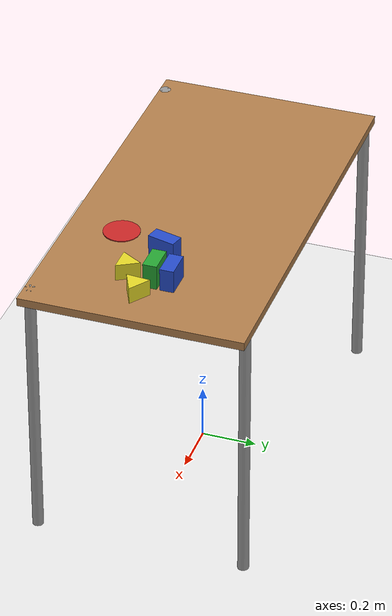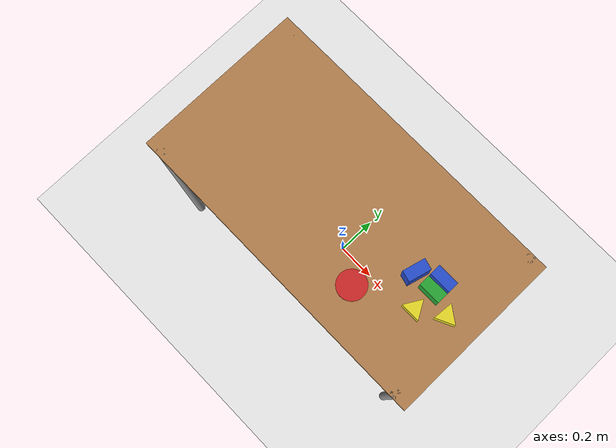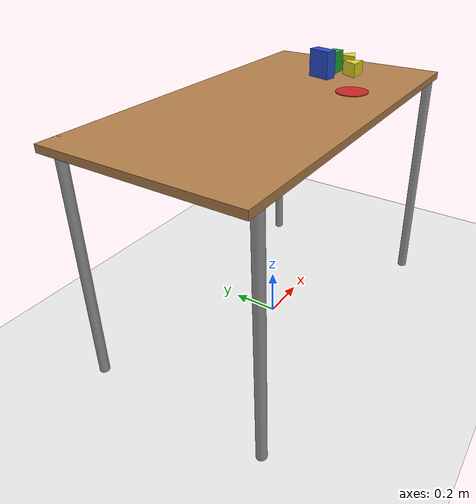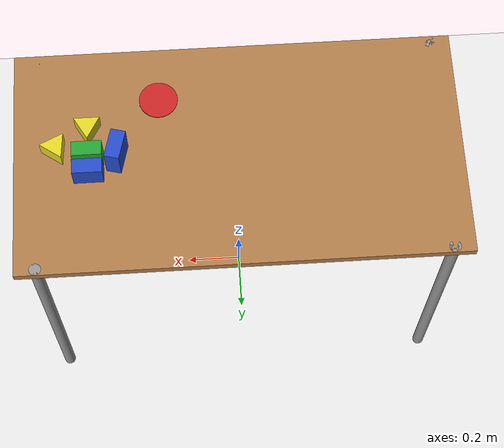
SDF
<sdf version="1.7">
 <world name="default">
  <light name="sun" type="directional">
   <pose>0 0 10 0 -0 0</pose>
   <diffuse>0.8 0.8 0.8 1</diffuse>
   <specular>0.2 0.2 0.2 1</specular>
   <attenuation>
    <range>1000</range>
    <constant>0.9</constant>
    <linear>0.01</linear>
    <quadratic>0.001</quadratic>
   </attenuation>
   <direction>-0.5 0.1 -0.9</direction>
   <spot><inner_angle>0</inner_angle><outer_angle>0</outer_angle><falloff>0</falloff></spot>
  </light>
  <model name="ground_plane">
   <static>1</static>
   <link name="link">
    <collision name="collision">
     <geometry><plane><normal>0 0 1</normal><size>100 100</size></plane></geometry>
     <surface>
      <contact><collide_bitmask>65535</collide_bitmask></contact>
      <friction><ode><mu>100</mu><mu2>50</mu2></ode></friction>
     </surface>
    </collision>
    <visual name="visual">
     <cast_shadows>0</cast_shadows>
     <geometry><plane><normal>0 0 1</normal><size>100 100</size></plane></geometry>
     <material>
      <script><uri>file://media/materials/scripts/gazebo.material</uri><name>Gazebo/WhiteGlow</name></script>
     </material>
    </visual>
   </link>
  </model>
  <gravity>0 0 -9.8</gravity>
  <magnetic_field>6e-06 2.3e-05 -4.2e-05</magnetic_field>
  <atmosphere type="adiabatic"/>
  <physics name="default_physics" default="0" type="ode">
   <max_step_size>0.001</max_step_size>
   <real_time_factor>2</real_time_factor>
   <real_time_update_rate>2000</real_time_update_rate>
  </physics>
  <scene><ambient>0.4 0.4 0.4 1</ambient><background>0.7 0.7 0.7 1</background><shadows>1</shadows></scene>
  <audio><device>default</device></audio>
  <spherical_coordinates>
   <surface_model>EARTH_WGS84</surface_model>
   <latitude_deg>0</latitude_deg>
   <longitude_deg>0</longitude_deg>
   <elevation>0</elevation>
   <heading_deg>0</heading_deg>
  </spherical_coordinates>
  <model name="table">
   <static>1</static>
   <link name="link">
    <collision name="surface">
     <pose>0 0 0.985 0 -0 0</pose>
     <geometry><box><size>1.5 0.8 0.03</size></box></geometry>
     <surface><friction><ode><mu>0.6</mu><mu2>0.6</mu2></ode></friction></surface>
    </collision>
    <visual name="visual1">
     <pose>0 0 0.985 0 -0 0</pose>
     <geometry><box><size>1.5 0.8 0.03</size></box></geometry>
     <material>
      <script><uri>file://media/materials/scripts/gazebo.material</uri><name>Gazebo/Wood</name></script>
     </material>
    </visual>
    <collision name="front_left_leg">
     <pose>0.68 0.38 0.5 0 -0 0</pose>
     <geometry><cylinder><radius>0.02</radius><length>1</length></cylinder></geometry>
    </collision>
    <visual name="front_left_leg">
     <pose>0.68 0.38 0.5 0 -0 0</pose>
     <geometry><cylinder><radius>0.02</radius><length>1</length></cylinder></geometry>
     <material>
      <script><uri>file://media/materials/scripts/gazebo.material</uri><name>Gazebo/Grey</name></script>
     </material>
    </visual>
    <collision name="front_right_leg">
     <pose>0.68 -0.38 0.5 0 -0 0</pose>
     <geometry><cylinder><radius>0.02</radius><length>1</length></cylinder></geometry>
    </collision>
    <visual name="front_right_leg">
     <pose>0.68 -0.38 0.5 0 -0 0</pose>
     <geometry><cylinder><radius>0.02</radius><length>1</length></cylinder></geometry>
     <material>
      <script><uri>file://media/materials/scripts/gazebo.material</uri><name>Gazebo/Grey</name></script>
     </material>
    </visual>
    <collision name="back_right_leg">
     <pose>-0.68 -0.38 0.5 0 -0 0</pose>
     <geometry><cylinder><radius>0.02</radius><length>1</length></cylinder></geometry>
    </collision>
    <visual name="back_right_leg">
     <pose>-0.68 -0.38 0.5 0 -0 0</pose>
     <geometry><cylinder><radius>0.02</radius><length>1</length></cylinder></geometry>
     <material>
      <script><uri>file://media/materials/scripts/gazebo.material</uri><name>Gazebo/Grey</name></script>
     </material>
    </visual>
    <collision name="back_left_leg">
     <pose>-0.68 0.38 0.5 0 -0 0</pose>
     <geometry><cylinder><radius>0.02</radius><length>1</length></cylinder></geometry>
    </collision>
    <visual name="back_left_leg">
     <pose>-0.68 0.38 0.5 0 -0 0</pose>
     <geometry><cylinder><radius>0.02</radius><length>1</length></cylinder></geometry>
     <material>
      <script><uri>file://media/materials/scripts/gazebo.material</uri><name>Gazebo/Grey</name></script>
     </material>
    </visual>
   </link>
  </model>
  <model name="cube">
   <static>0</static>
   <pose>0.5 -2e-06 1.04529 -5e-06 4e-06 0.001005</pose>
   <link name="link">
    <inertial>
     <mass>1</mass>
     <inertia><ixx>0.1</ixx><ixy>0</ixy><ixz>0</ixz><iyy>0.1</iyy><iyz>0</iyz><izz>0.1</izz></inertia>
    </inertial>
    <visual name="visual">
     <geometry><box><size>0.1 0.05 0.0905843</size></box></geometry>
     <material>
      <script><name>Gazebo/Green</name><uri>file://media/materials/scripts/gazebo.material</uri></script>
     </material>
    </visual>
    <collision name="collision"><geometry><box><size>0.1 0.05 0.0905843</size></box></geometry></collision>
   </link>
  </model>
  <model name="cube2">
   <static>0</static>
   <pose>0.5 0.059999 1.04184 -2e-06 -1.5e-05 0.00049</pose>
   <link name="link">
    <inertial>
     <mass>1</mass>
     <inertia><ixx>0.1</ixx><ixy>0</ixy><ixz>0</ixz><iyy>0.1</iyy><iyz>0</iyz><izz>0.1</izz></inertia>
    </inertial>
    <visual name="visual">
     <geometry><box><size>0.1 0.05 0.0836808</size></box></geometry>
     <material>
      <script><name>Gazebo/blue</name><uri>file://media/materials/scripts/gazebo.material</uri></script>
     </material>
    </visual>
    <collision name="collision"><geometry><box><size>0.1 0.05 0.0836808</size></box></geometry></collision>
   </link>
  </model>
  <model name="pushed_object">
   <static>0</static>
   <pose>0.5 -0.1 1.03 0 1e-06 8e-06</pose>
   <link name="link">
    <inertial>
     <mass>1</mass>
     <inertia><ixx>0.1</ixx><ixy>0</ixy><ixz>0</ixz><iyy>0.1</iyy><iyz>0</iyz><izz>0.1</izz></inertia>
    </inertial>
    <visual name="visual">
     <geometry><mesh><uri>model://objects/meshes/triangular_prism.dae</uri></mesh></geometry>
     <material>
      <script><name>Gazebo/Yellow</name><uri>file://media/materials/scripts/gazebo.material</uri></script>
     </material>
    </visual>
    <collision name="collision">
     <geometry><mesh><uri>model://objects/meshes/triangular_prism.dae</uri></mesh></geometry>
    </collision>
   </link>
  </model>
  <model name="cube2_clone">
   <static>0</static>
   <pose>0.404433 0.00269 1.05831 0 -1e-06 1.31565</pose>
   <link name="link">
    <inertial>
     <mass>1</mass>
     <inertia><ixx>0.1</ixx><ixy>0</ixy><ixz>0</ixz><iyy>0.1</iyy><iyz>0</iyz><izz>0.1</izz></inertia>
    </inertial>
    <visual name="visual">
     <geometry><box><size>0.1 0.05 0.116618</size></box></geometry>
     <material>
      <script><name>Gazebo/blue</name><uri>file://media/materials/scripts/gazebo.material</uri></script>
     </material>
    </visual>
    <collision name="collision"><geometry><box><size>0.1 0.05 0.116618</size></box></geometry></collision>
   </link>
  </model>
  <model name="pushed_object_clone">
   <static>0</static>
   <pose>0.607388 -0.030508 1.03 -0 1e-06 0.44116</pose>
   <link name="link">
    <inertial>
     <mass>1</mass>
     <inertia><ixx>0.1</ixx><ixy>0</ixy><ixz>0</ixz><iyy>0.1</iyy><iyz>0</iyz><izz>0.1</izz></inertia>
    </inertial>
    <visual name="visual">
     <geometry><mesh><uri>model://objects/meshes/triangular_prism.dae</uri></mesh></geometry>
     <material>
      <script><name>Gazebo/Yellow</name><uri>file://media/materials/scripts/gazebo.material</uri></script>
     </material>
    </visual>
    <collision name="collision">
     <geometry><mesh><uri>model://objects/meshes/triangular_prism.dae</uri></mesh></geometry>
    </collision>
   </link>
  </model>
  <model name="unit_cylinder">
   <link name="link">
    <inertial>
     <mass>1</mass>
     <inertia><ixx>0.145833</ixx><ixy>0</ixy><ixz>0</ixz><iyy>0.145833</iyy><iyz>0</iyz><izz>0.125</izz></inertia>
    </inertial>
    <visual name="visual">
     <geometry><cylinder><radius>0.0654006</radius><length>0.00341783</length></cylinder></geometry>
     <material>
      <script><name>Gazebo/Red</name><uri>file://media/materials/scripts/gazebo.material</uri></script>
      <shader type="pixel"><normal_map>__default__</normal_map></shader>
      <ambient>1 0 0 1</ambient>
      <diffuse>1 0 0 1</diffuse>
      <specular>0.1 0.1 0.1 1</specular>
      <emissive>0 0 0 1</emissive>
     </material>
    </visual>
    <collision name="collision">
     <geometry><cylinder><radius>0.065401</radius><length>0.00341793</length></cylinder></geometry>
     <surface>
      <friction>
       <ode><mu>1</mu><mu2>1</mu2><fdir1>0 0 0</fdir1><slip1>0</slip1><slip2>0</slip2></ode>
       <torsional>
        <coefficient>1</coefficient>
        <patch_radius>0</patch_radius>
        <surface_radius>0</surface_radius>
        <use_patch_radius>1</use_patch_radius>
        <ode><slip>0</slip></ode>
       </torsional>
      </friction>
      <bounce><restitution_coefficient>0</restitution_coefficient><threshold>1e+06</threshold></bounce>
      <contact>
       <collide_without_contact>0</collide_without_contact>
       <collide_without_contact_bitmask>1</collide_without_contact_bitmask>
       <collide_bitmask>1</collide_bitmask>
       <ode>
        <soft_cfm>0</soft_cfm>
        <soft_erp>0.2</soft_erp>
        <kp>1e+13</kp>
        <kd>1</kd>
        <max_vel>0.01</max_vel>
        <min_depth>0</min_depth>
       </ode>
       <bullet>
        <split_impulse>1</split_impulse>
        <split_impulse_penetration_threshold>-0.01</split_impulse_penetration_threshold>
        <soft_cfm>0</soft_cfm>
        <soft_erp>0.2</soft_erp>
        <kp>1e+13</kp>
        <kd>1</kd>
       </bullet>
      </contact>
     </surface>
    </collision>
   </link>
   <static>0</static>
   <pose>0.260823 -0.20552 1.00377 8.4e-05 -8e-05 1e-06</pose>
  </model>
 </world>
</sdf>
